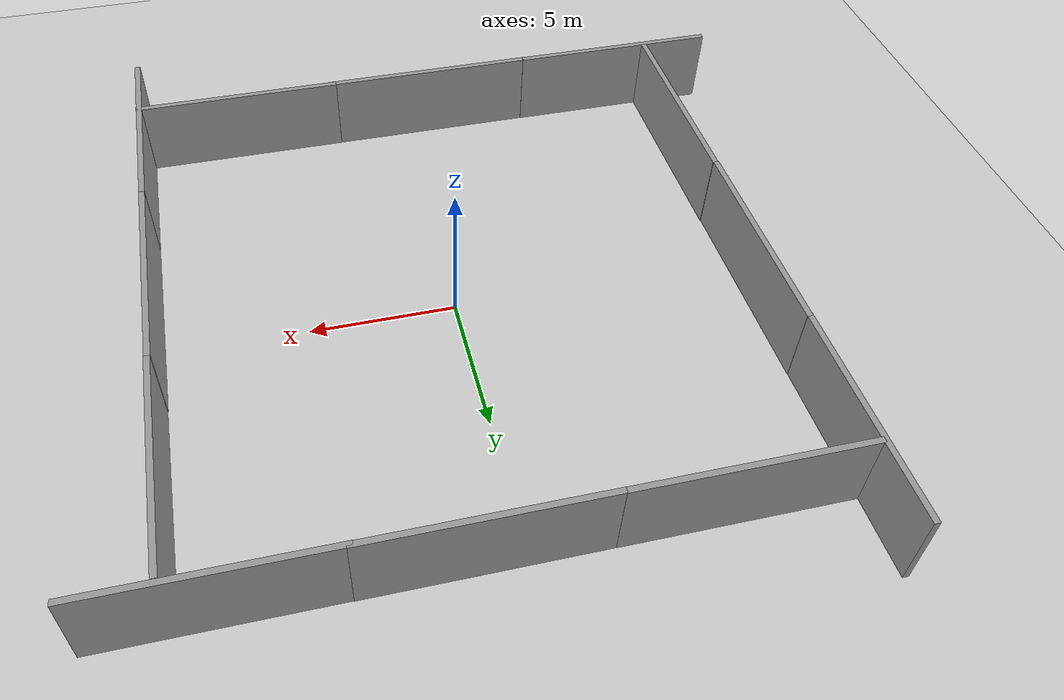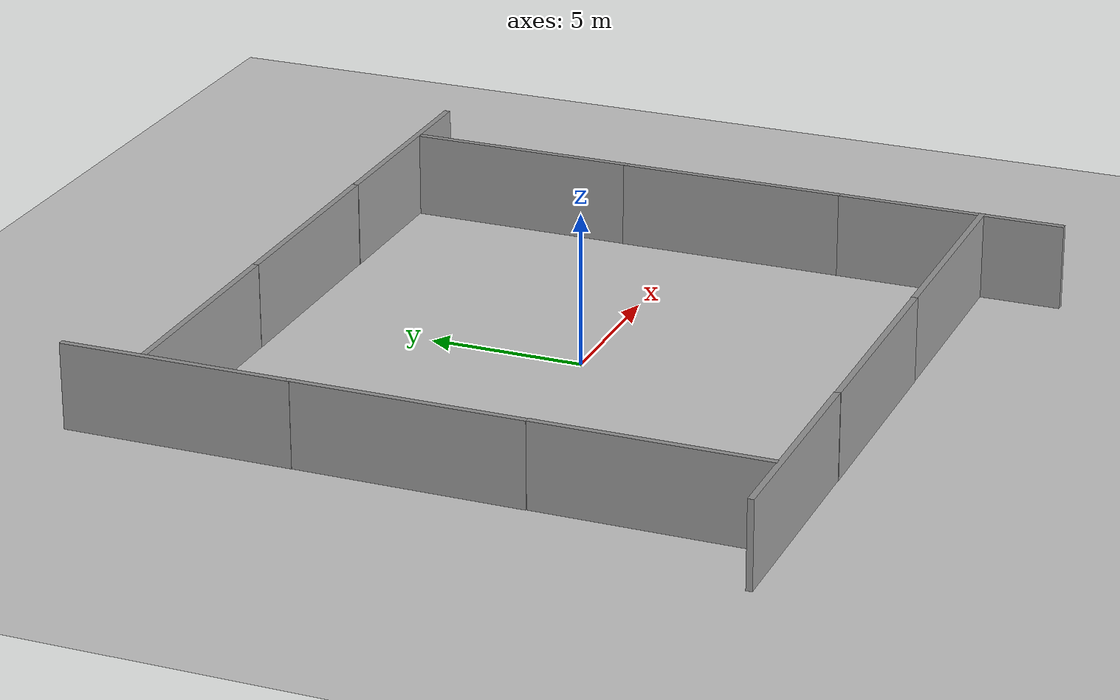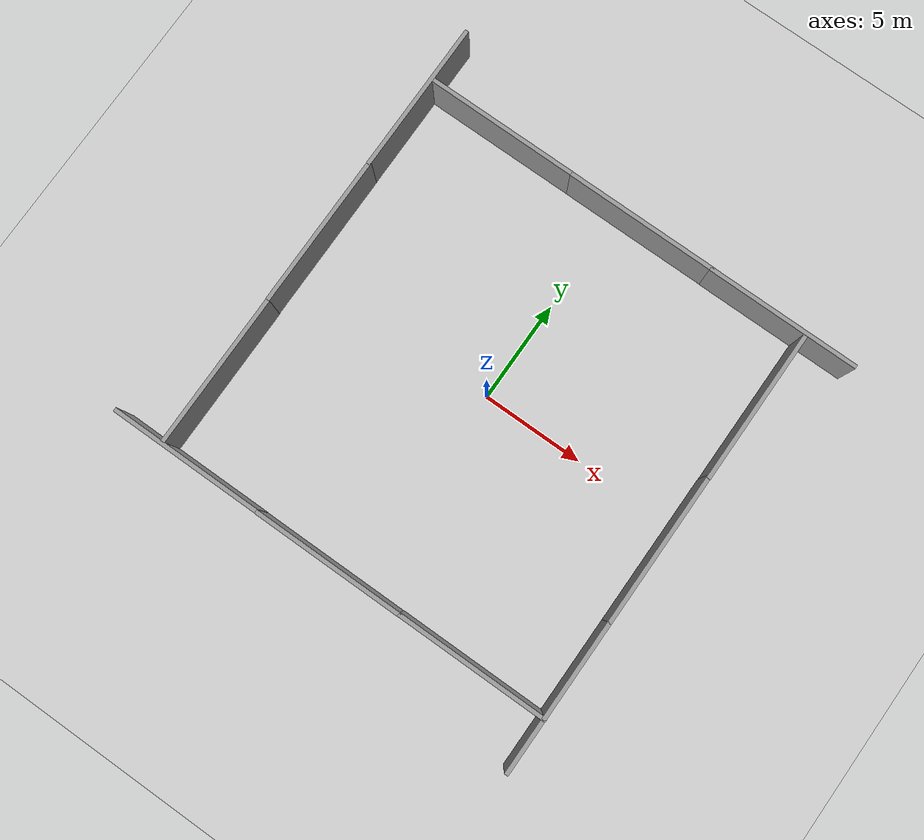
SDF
<sdf version="1.6">
 <world name="default">
  <light name="sun" type="directional">
   <pose>0 0 10 0 -0 0</pose>
   <diffuse>0.8 0.8 0.8 1</diffuse>
   <specular>0.2 0.2 0.2 1</specular>
   <attenuation>
    <range>1000</range>
    <constant>0.9</constant>
    <linear>0.01</linear>
    <quadratic>0.001</quadratic>
   </attenuation>
   <direction>-0.5 0.1 -0.9</direction>
  </light>
  <model name="ground_plane">
   <static>1</static>
   <link name="link">
    <collision name="collision">
     <geometry><plane><normal>0 0 1</normal><size>100 100</size></plane></geometry>
     <surface>
      <contact><collide_bitmask>65535</collide_bitmask></contact>
      <friction><ode><mu>100</mu><mu2>50</mu2></ode></friction>
     </surface>
    </collision>
    <visual name="visual">
     <cast_shadows>0</cast_shadows>
     <geometry><plane><normal>0 0 1</normal><size>100 100</size></plane></geometry>
     <material>
      <script><uri>file://media/materials/scripts/gazebo.material</uri><name>Gazebo/Grey</name></script>
     </material>
    </visual>
   </link>
  </model>
  <gravity>0 0 -9.8</gravity>
  <magnetic_field>6e-06 2.3e-05 -4.2e-05</magnetic_field>
  <atmosphere type="adiabatic"/>
  <physics name="default_physics" default="0" type="ode">
   <max_step_size>0.001</max_step_size>
   <real_time_factor>1</real_time_factor>
   <real_time_update_rate>1000</real_time_update_rate>
  </physics>
  <scene><ambient>0.4 0.4 0.4 1</ambient><background>0.7 0.7 0.7 1</background><shadows>1</shadows></scene>
  <audio><device>default</device></audio>
  <spherical_coordinates>
   <surface_model>EARTH_WGS84</surface_model>
   <latitude_deg>0</latitude_deg>
   <longitude_deg>0</longitude_deg>
   <elevation>0</elevation>
   <heading_deg>0</heading_deg>
  </spherical_coordinates>
  <model name="grey_wall">
   <static>1</static>
   <link name="link">
    <pose>0 0 1.4 0 -0 0</pose>
    <collision name="collision"><geometry><box><size>7.5 0.2 2.8</size></box></geometry></collision>
    <visual name="visual">
     <cast_shadows>0</cast_shadows>
     <geometry><box><size>7.5 0.2 2.8</size></box></geometry>
     <material>
      <script>
       <uri>model://grey_wall/materials/scripts</uri>
       <uri>model://grey_wall/materials/textures</uri>
       <name>vrc/grey_wall</name>
      </script>
     </material>
    </visual>
   </link>
   <pose>-6.1823 9.8694 0 0 -0 0</pose>
  </model>
  <model name="grey_wall_clone">
   <static>1</static>
   <link name="link">
    <pose>0 0 1.4 0 -0 0</pose>
    <collision name="collision"><geometry><box><size>7.5 0.2 2.8</size></box></geometry></collision>
    <visual name="visual">
     <cast_shadows>0</cast_shadows>
     <geometry><box><size>7.5 0.2 2.8</size></box></geometry>
     <material>
      <script>
       <uri>model://grey_wall/materials/scripts</uri>
       <uri>model://grey_wall/materials/textures</uri>
       <name>vrc/grey_wall</name>
      </script>
     </material>
    </visual>
   </link>
   <pose>1.29231 9.86358 0 0 -0 0</pose>
  </model>
  <model name="grey_wall_clone_0">
   <static>1</static>
   <link name="link">
    <pose>0 0 1.4 0 -0 0</pose>
    <collision name="collision"><geometry><box><size>7.5 0.2 2.8</size></box></geometry></collision>
    <visual name="visual">
     <cast_shadows>0</cast_shadows>
     <geometry><box><size>7.5 0.2 2.8</size></box></geometry>
     <material>
      <script>
       <uri>model://grey_wall/materials/scripts</uri>
       <uri>model://grey_wall/materials/textures</uri>
       <name>vrc/grey_wall</name>
      </script>
     </material>
    </visual>
   </link>
   <pose>8.61663 9.85102 0 0 -0 0</pose>
  </model>
  <model name="grey_wall_clone_1">
   <static>1</static>
   <link name="link">
    <pose>0 0 1.4 0 -0 0</pose>
    <collision name="collision"><geometry><box><size>7.5 0.2 2.8</size></box></geometry></collision>
    <visual name="visual">
     <cast_shadows>0</cast_shadows>
     <geometry><box><size>7.5 0.2 2.8</size></box></geometry>
     <material>
      <script>
       <uri>model://grey_wall/materials/scripts</uri>
       <uri>model://grey_wall/materials/textures</uri>
       <name>vrc/grey_wall</name>
      </script>
     </material>
    </visual>
   </link>
   <pose>6.23187 -9.87744 0 0 -0 0</pose>
  </model>
  <model name="grey_wall_clone_2">
   <static>1</static>
   <link name="link">
    <pose>0 0 1.4 0 -0 0</pose>
    <collision name="collision"><geometry><box><size>7.5 0.2 2.8</size></box></geometry></collision>
    <visual name="visual">
     <cast_shadows>0</cast_shadows>
     <geometry><box><size>7.5 0.2 2.8</size></box></geometry>
     <material>
      <script>
       <uri>model://grey_wall/materials/scripts</uri>
       <uri>model://grey_wall/materials/textures</uri>
       <name>vrc/grey_wall</name>
      </script>
     </material>
    </visual>
   </link>
   <pose>-1.15968 -9.88764 0 0 -0 0</pose>
  </model>
  <model name="grey_wall_clone_3">
   <static>1</static>
   <link name="link">
    <pose>0 0 1.4 0 -0 0</pose>
    <collision name="collision"><geometry><box><size>7.5 0.2 2.8</size></box></geometry></collision>
    <visual name="visual">
     <cast_shadows>0</cast_shadows>
     <geometry><box><size>7.5 0.2 2.8</size></box></geometry>
     <material>
      <script>
       <uri>model://grey_wall/materials/scripts</uri>
       <uri>model://grey_wall/materials/textures</uri>
       <name>vrc/grey_wall</name>
      </script>
     </material>
    </visual>
   </link>
   <pose>-8.64612 -9.87511 0 0 -0 0</pose>
  </model>
  <model name="grey_wall_clone_4">
   <static>1</static>
   <link name="link">
    <pose>0 0 1.4 0 -0 0</pose>
    <collision name="collision"><geometry><box><size>7.5 0.2 2.8</size></box></geometry></collision>
    <visual name="visual">
     <cast_shadows>0</cast_shadows>
     <geometry><box><size>7.5 0.2 2.8</size></box></geometry>
     <material>
      <script>
       <uri>model://grey_wall/materials/scripts</uri>
       <uri>model://grey_wall/materials/textures</uri>
       <name>vrc/grey_wall</name>
      </script>
     </material>
    </visual>
   </link>
   <pose>-9.93216 1.43506 0 0 0 -1.56923</pose>
  </model>
  <model name="grey_wall_clone_4_clone">
   <static>1</static>
   <link name="link">
    <pose>0 0 1.4 0 -0 0</pose>
    <collision name="collision"><geometry><box><size>7.5 0.2 2.8</size></box></geometry></collision>
    <visual name="visual">
     <cast_shadows>0</cast_shadows>
     <geometry><box><size>7.5 0.2 2.8</size></box></geometry>
     <material>
      <script>
       <uri>model://grey_wall/materials/scripts</uri>
       <uri>model://grey_wall/materials/textures</uri>
       <name>vrc/grey_wall</name>
      </script>
     </material>
    </visual>
   </link>
   <pose>-9.89875 -6.05385 0 0 0 -1.56923</pose>
  </model>
  <model name="grey_wall_clone_4_clone_0">
   <static>1</static>
   <link name="link">
    <pose>0 0 1.4 0 -0 0</pose>
    <collision name="collision"><geometry><box><size>7.5 0.2 2.8</size></box></geometry></collision>
    <visual name="visual">
     <cast_shadows>0</cast_shadows>
     <geometry><box><size>7.5 0.2 2.8</size></box></geometry>
     <material>
      <script>
       <uri>model://grey_wall/materials/scripts</uri>
       <uri>model://grey_wall/materials/textures</uri>
       <name>vrc/grey_wall</name>
      </script>
     </material>
    </visual>
   </link>
   <pose>-9.95341 8.82902 0 0 0 -1.56923</pose>
  </model>
  <model name="grey_wall_clone_4_clone_1">
   <static>1</static>
   <link name="link">
    <pose>0 0 1.4 0 -0 0</pose>
    <collision name="collision"><geometry><box><size>7.5 0.2 2.8</size></box></geometry></collision>
    <visual name="visual">
     <cast_shadows>0</cast_shadows>
     <geometry><box><size>7.5 0.2 2.8</size></box></geometry>
     <material>
      <script>
       <uri>model://grey_wall/materials/scripts</uri>
       <uri>model://grey_wall/materials/textures</uri>
       <name>vrc/grey_wall</name>
      </script>
     </material>
    </visual>
   </link>
   <pose>9.85804 5.99126 0 0 0 -1.56923</pose>
  </model>
  <model name="grey_wall_clone_4_clone_2">
   <static>1</static>
   <link name="link">
    <pose>0 0 1.4 0 -0 0</pose>
    <collision name="collision"><geometry><box><size>7.5 0.2 2.8</size></box></geometry></collision>
    <visual name="visual">
     <cast_shadows>0</cast_shadows>
     <geometry><box><size>7.5 0.2 2.8</size></box></geometry>
     <material>
      <script>
       <uri>model://grey_wall/materials/scripts</uri>
       <uri>model://grey_wall/materials/textures</uri>
       <name>vrc/grey_wall</name>
      </script>
     </material>
    </visual>
   </link>
   <pose>9.85793 -1.38042 0 0 0 -1.56923</pose>
  </model>
  <model name="grey_wall_clone_4_clone_3">
   <static>1</static>
   <link name="link">
    <pose>0 0 1.4 0 -0 0</pose>
    <collision name="collision"><geometry><box><size>7.5 0.2 2.8</size></box></geometry></collision>
    <visual name="visual">
     <cast_shadows>0</cast_shadows>
     <geometry><box><size>7.5 0.2 2.8</size></box></geometry>
     <material>
      <script>
       <uri>model://grey_wall/materials/scripts</uri>
       <uri>model://grey_wall/materials/textures</uri>
       <name>vrc/grey_wall</name>
      </script>
     </material>
    </visual>
   </link>
   <pose>9.86856 -8.85414 0 0 0 -1.56923</pose>
  </model>
  <light name="user_point_light_0" type="point">
   <pose>-0.615111 0.972568 1 0 -0 0</pose>
   <diffuse>0.5 0.5 0.5 1</diffuse>
   <specular>0.1 0.1 0.1 1</specular>
   <attenuation>
    <range>20</range>
    <constant>0.5</constant>
    <linear>0.01</linear>
    <quadratic>0.001</quadratic>
   </attenuation>
   <cast_shadows>0</cast_shadows>
   <direction>0 0 -1</direction>
  </light>
 </world>
</sdf>
